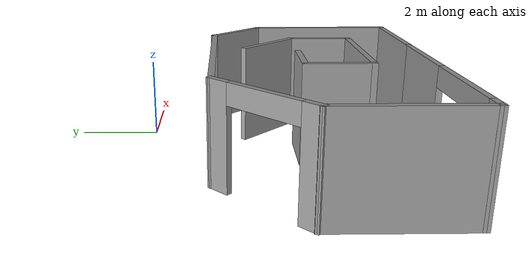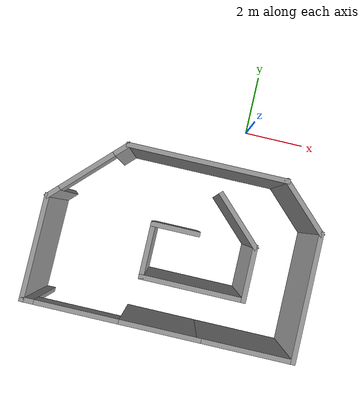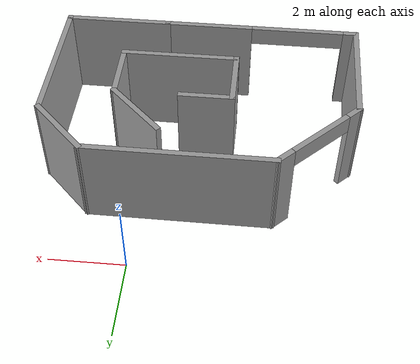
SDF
<?xml version='1.0'?>
<sdf version='1.7'>
  <model name='Mundo1.world'>
    <pose>-1.48855 -3.43189 0 0 -0 0</pose>
    <link name='Wall_0'>
      <collision name='Wall_0_Collision'>
        <geometry>
          <box>
            <size>5 0.15 2.5</size>
          </box>
        </geometry>
        <pose>0 0 1.25 0 -0 0</pose>
      </collision>
      <visual name='Wall_0_Visual'>
        <pose>0 0 1.25 0 -0 0</pose>
        <geometry>
          <box>
            <size>5 0.15 2.5</size>
          </box>
        </geometry>
        <material>
          <script>
            <uri>file://media/materials/scripts/gazebo.material</uri>
            <name>Gazebo/Grey</name>
          </script>
          <ambient>1 1 1 1</ambient>
        </material>
        <meta>
          <layer>0</layer>
        </meta>
      </visual>
      <pose>0.353554 1.80189 0 0 -0 0</pose>
    </link>
    <link name='Wall_1'>
      <collision name='Wall_1_Collision'>
        <geometry>
          <box>
            <size>2 0.15 2.5</size>
          </box>
        </geometry>
        <pose>0 0 1.25 0 -0 0</pose>
      </collision>
      <visual name='Wall_1_Visual'>
        <pose>0 0 1.25 0 -0 0</pose>
        <geometry>
          <box>
            <size>2 0.15 2.5</size>
          </box>
        </geometry>
        <material>
          <script>
            <uri>file://media/materials/scripts/gazebo.material</uri>
            <name>Gazebo/Grey</name>
          </script>
          <ambient>1 1 1 1</ambient>
        </material>
        <meta>
          <layer>0</layer>
        </meta>
      </visual>
      <pose>3.43263 1.14782 0 0 -0 -0.785398</pose>
    </link>
    <link name='Wall_10'>
      <collision name='Wall_10_Collision'>
        <geometry>
          <box>
            <size>1.75 0.15 2.5</size>
          </box>
        </geometry>
        <pose>0 0 1.25 0 -0 0</pose>
      </collision>
      <visual name='Wall_10_Visual'>
        <pose>0 0 1.25 0 -0 0</pose>
        <geometry>
          <box>
            <size>1.75 0.15 2.5</size>
          </box>
        </geometry>
        <material>
          <script>
            <uri>file://media/materials/scripts/gazebo.material</uri>
            <name>Gazebo/Grey</name>
          </script>
          <ambient>1 1 1 1</ambient>
        </material>
        <meta>
          <layer>0</layer>
        </meta>
      </visual>
      <pose>-0.831299 -1.12826 0 0 -0 1.5708</pose>
    </link>
    <link name='Wall_11'>
      <collision name='Wall_11_Collision'>
        <geometry>
          <box>
            <size>1.5 0.15 2.5</size>
          </box>
        </geometry>
        <pose>0 0 1.25 0 -0 0</pose>
      </collision>
      <visual name='Wall_11_Visual'>
        <pose>0 0 1.25 0 -0 0</pose>
        <geometry>
          <box>
            <size>1.5 0.15 2.5</size>
          </box>
        </geometry>
        <material>
          <script>
            <uri>file://media/materials/scripts/gazebo.material</uri>
            <name>Gazebo/Grey</name>
          </script>
          <ambient>1 1 1 1</ambient>
        </material>
        <meta>
          <layer>0</layer>
        </meta>
      </visual>
      <pose>-0.156299 -0.328258 0 0 -0 0</pose>
    </link>
    <link name='Wall_13'>
      <pose>-3.07907 0.794263 0 0 -0 -2.35619</pose>
      <visual name='Wall_13_Visual_0'>
        <pose>-1.20159 0 1.25 0 -0 0</pose>
        <geometry>
          <box>
            <size>0.596816 0.15 2.5</size>
          </box>
        </geometry>
        <material>
          <script>
            <uri>file://media/materials/scripts/gazebo.material</uri>
            <name>Gazebo/Grey</name>
          </script>
          <ambient>1 1 1 1</ambient>
        </material>
        <meta>
          <layer>0</layer>
        </meta>
      </visual>
      <collision name='Wall_13_Collision_0'>
        <geometry>
          <box>
            <size>0.596816 0.15 2.5</size>
          </box>
        </geometry>
        <pose>-1.20159 0 1.25 0 -0 0</pose>
      </collision>
      <visual name='Wall_13_Visual_1'>
        <pose>1.25045 0 1.25 0 -0 0</pose>
        <geometry>
          <box>
            <size>0.499092 0.15 2.5</size>
          </box>
        </geometry>
        <material>
          <script>
            <uri>file://media/materials/scripts/gazebo.material</uri>
            <name>Gazebo/Grey</name>
          </script>
          <ambient>1 1 1 1</ambient>
        </material>
        <meta>
          <layer>0</layer>
        </meta>
      </visual>
      <collision name='Wall_13_Collision_1'>
        <geometry>
          <box>
            <size>0.499092 0.15 2.5</size>
          </box>
        </geometry>
        <pose>1.25045 0 1.25 0 -0 0</pose>
      </collision>
      <visual name='Wall_13_Visual_2'>
        <pose>0.048862 0 2.25 0 -0 0</pose>
        <geometry>
          <box>
            <size>1.90409 0.15 0.5</size>
          </box>
        </geometry>
        <material>
          <script>
            <uri>file://media/materials/scripts/gazebo.material</uri>
            <name>Gazebo/Grey</name>
          </script>
          <ambient>1 1 1 1</ambient>
        </material>
        <meta>
          <layer>0</layer>
        </meta>
      </visual>
      <collision name='Wall_13_Collision_2'>
        <geometry>
          <box>
            <size>1.90409 0.15 0.5</size>
          </box>
        </geometry>
        <pose>0.048862 0 2.25 0 -0 0</pose>
      </collision>
    </link>
    <link name='Wall_14'>
      <collision name='Wall_14_Collision'>
        <geometry>
          <box>
            <size>3.29301 0.15 2.5</size>
          </box>
        </geometry>
        <pose>0 0 1.25 0 -0 0</pose>
      </collision>
      <visual name='Wall_14_Visual'>
        <pose>0 0 1.25 0 -0 0</pose>
        <geometry>
          <box>
            <size>3.29301 0.15 2.5</size>
          </box>
        </geometry>
        <material>
          <script>
            <uri>file://media/materials/scripts/gazebo.material</uri>
            <name>Gazebo/Grey</name>
          </script>
          <ambient>1 1 1 1</ambient>
        </material>
        <meta>
          <layer>0</layer>
        </meta>
      </visual>
      <pose>-4.1 -1.78481 0 0 -0 -1.57926</pose>
    </link>
    <link name='Wall_16'>
      <pose>-1.4383 -3.35626 0 0 -0 0</pose>
      <visual name='Wall_16_Visual_0'>
        <pose>-2.53124 0 1.25 0 -0 0</pose>
        <geometry>
          <box>
            <size>0.43752 0.15 2.5</size>
          </box>
        </geometry>
        <material>
          <script>
            <uri>file://media/materials/scripts/gazebo.material</uri>
            <name>Gazebo/Grey</name>
          </script>
          <ambient>1 1 1 1</ambient>
        </material>
        <meta>
          <layer>0</layer>
        </meta>
      </visual>
      <collision name='Wall_16_Collision_0'>
        <geometry>
          <box>
            <size>0.43752 0.15 2.5</size>
          </box>
        </geometry>
        <pose>-2.53124 0 1.25 0 -0 0</pose>
      </collision>
      <visual name='Wall_16_Visual_1'>
        <pose>1.50376 0 1.25 0 -0 0</pose>
        <geometry>
          <box>
            <size>2.49248 0.15 2.5</size>
          </box>
        </geometry>
        <material>
          <script>
            <uri>file://media/materials/scripts/gazebo.material</uri>
            <name>Gazebo/Grey</name>
          </script>
          <ambient>1 1 1 1</ambient>
        </material>
        <meta>
          <layer>0</layer>
        </meta>
      </visual>
      <collision name='Wall_16_Collision_1'>
        <geometry>
          <box>
            <size>2.49248 0.15 2.5</size>
          </box>
        </geometry>
        <pose>1.50376 0 1.25 0 -0 0</pose>
      </collision>
      <visual name='Wall_16_Visual_2'>
        <pose>-1.02748 0 2.25 0 -0 0</pose>
        <geometry>
          <box>
            <size>2.57 0.15 0.5</size>
          </box>
        </geometry>
        <material>
          <script>
            <uri>file://media/materials/scripts/gazebo.material</uri>
            <name>Gazebo/Grey</name>
          </script>
          <ambient>1 1 1 1</ambient>
        </material>
        <meta>
          <layer>0</layer>
        </meta>
      </visual>
      <collision name='Wall_16_Collision_2'>
        <geometry>
          <box>
            <size>2.57 0.15 0.5</size>
          </box>
        </geometry>
        <pose>-1.02748 0 2.25 0 -0 0</pose>
      </collision>
    </link>
    <link name='Wall_3'>
      <collision name='Wall_3_Collision'>
        <geometry>
          <box>
            <size>4 0.15 2.5</size>
          </box>
        </geometry>
        <pose>0 0 1.25 0 -0 0</pose>
      </collision>
      <visual name='Wall_3_Visual'>
        <pose>0 0 1.25 0 -0 0</pose>
        <geometry>
          <box>
            <size>4 0.15 2.5</size>
          </box>
        </geometry>
        <material>
          <script>
            <uri>file://media/materials/scripts/gazebo.material</uri>
            <name>Gazebo/Grey</name>
          </script>
          <ambient>1 1 1 1</ambient>
        </material>
        <meta>
          <layer>0</layer>
        </meta>
      </visual>
      <pose>4.0867 -1.43126 0 0 -0 -1.5708</pose>
    </link>
    <link name='Wall_4'>
      <collision name='Wall_4_Collision'>
        <geometry>
          <box>
            <size>3 0.15 2.5</size>
          </box>
        </geometry>
        <pose>0 0 1.25 0 -0 0</pose>
      </collision>
      <visual name='Wall_4_Visual'>
        <pose>0 0 1.25 0 -0 0</pose>
        <geometry>
          <box>
            <size>3 0.15 2.5</size>
          </box>
        </geometry>
        <material>
          <script>
            <uri>file://media/materials/scripts/gazebo.material</uri>
            <name>Gazebo/Grey</name>
          </script>
          <ambient>1 1 1 1</ambient>
        </material>
        <meta>
          <layer>0</layer>
        </meta>
      </visual>
      <pose>2.6617 -3.35626 0 0 -0 3.14159</pose>
    </link>
    <link name='Wall_6'>
      <collision name='Wall_6_Collision'>
        <geometry>
          <box>
            <size>2 0.15 2.5</size>
          </box>
        </geometry>
        <pose>0 0 1.25 0 -0 0</pose>
      </collision>
      <visual name='Wall_6_Visual'>
        <pose>0 0 1.25 0 -0 0</pose>
        <geometry>
          <box>
            <size>2 0.15 2.5</size>
          </box>
        </geometry>
        <material>
          <script>
            <uri>file://media/materials/scripts/gazebo.material</uri>
            <name>Gazebo/Grey</name>
          </script>
          <ambient>1 1 1 1</ambient>
        </material>
        <meta>
          <layer>0</layer>
        </meta>
      </visual>
      <pose>1.61463 0.325816 0 0 -0 -0.785398</pose>
    </link>
    <link name='Wall_7'>
      <collision name='Wall_7_Collision'>
        <geometry>
          <box>
            <size>1.75 0.15 2.5</size>
          </box>
        </geometry>
        <pose>0 0 1.25 0 -0 0</pose>
      </collision>
      <visual name='Wall_7_Visual'>
        <pose>0 0 1.25 0 -0 0</pose>
        <geometry>
          <box>
            <size>1.75 0.15 2.5</size>
          </box>
        </geometry>
        <material>
          <script>
            <uri>file://media/materials/scripts/gazebo.material</uri>
            <name>Gazebo/Grey</name>
          </script>
          <ambient>1 1 1 1</ambient>
        </material>
        <meta>
          <layer>0</layer>
        </meta>
      </visual>
      <pose>2.2687 -1.12826 0 0 -0 -1.5708</pose>
    </link>
    <link name='Wall_8'>
      <collision name='Wall_8_Collision'>
        <geometry>
          <box>
            <size>3.25 0.15 2.5</size>
          </box>
        </geometry>
        <pose>0 0 1.25 0 -0 0</pose>
      </collision>
      <visual name='Wall_8_Visual'>
        <pose>0 0 1.25 0 -0 0</pose>
        <geometry>
          <box>
            <size>3.25 0.15 2.5</size>
          </box>
        </geometry>
        <material>
          <script>
            <uri>file://media/materials/scripts/gazebo.material</uri>
            <name>Gazebo/Grey</name>
          </script>
          <ambient>1 1 1 1</ambient>
        </material>
        <meta>
          <layer>0</layer>
        </meta>
      </visual>
      <pose>0.718701 -1.92826 0 0 -0 3.14159</pose>
    </link>
    <static>1</static>
  </model>
</sdf>
